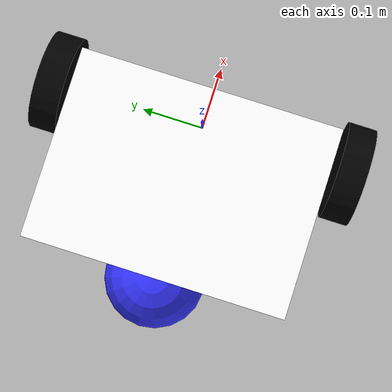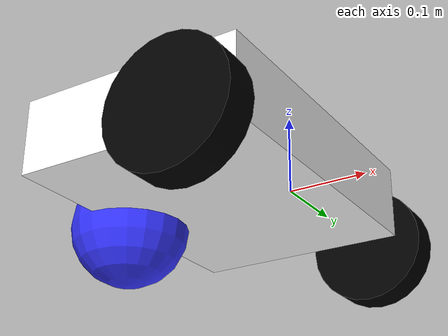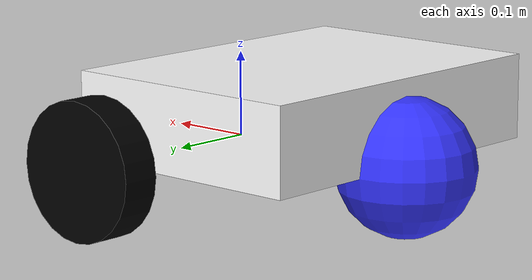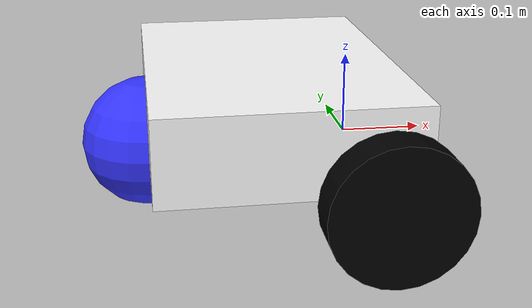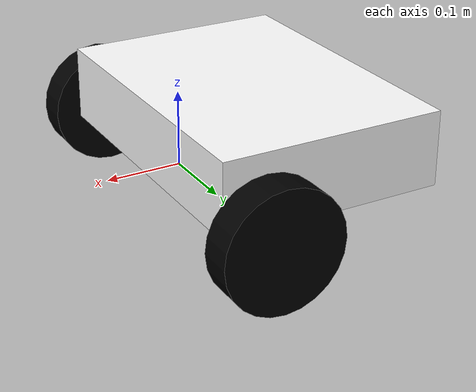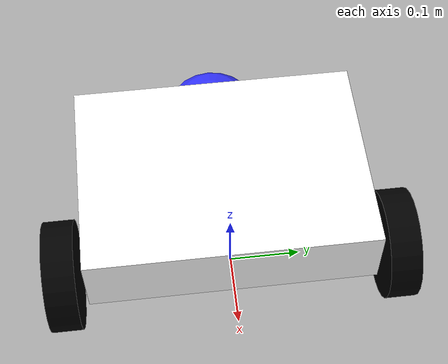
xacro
<?xml version="1.0"?>
<robot xmlns:xacro="http://www.ros.org/wiki/xacro">

    <xacro:include filename="inertial_macros.xacro"/>

    <material name="white">
        <color rgba="1 1 1 1" />
    </material>

    <material name="orange">
        <color rgba="1 0.3 0.1 1" />
    </material>

    <material name="blue">
        <color rgba="0.2 0.2 1 1" />
    </material>

    <material name="black">
        <color rgba="0 0 0 1" />
    </material>

    <material name="red">
        <color rgba="1 0 0 1" />
    </material>

    <!-- Base Link-->

    <link name="botwheel">
    </link>

    <!-- BASE_FOOTPRINT LINK -->

    <joint name="base_footprint_joint" type="fixed">
        <parent link="botwheel"/>
        <child link="base_footprint"/>
        <origin xyz="0 0 0" rpy="0 0 0"/>
    </joint>

    <link name="base_footprint">
    </link>

    <!-- Chassis Link -->

    <joint name="chassis_joint" type="fixed">
        <parent link="botwheel"/>
        <child link="chassis"/>
        <origin xyz= "0.05 0 0"/>
    </joint>

    <link name="chassis">
        <visual>
            <origin xyz="-0.15 0 0.05 "/>
            <geometry>
                <box size="0.3 0.415 0.1"/>
            </geometry>
            <material name="white"/>
        </visual>
        <collision>
            <origin xyz="-0.15 0 0.05 "/>
            <geometry>
                <box size="0.3 0.415 0.1"/>
            </geometry>
        </collision>
        <xacro:inertial_box mass="0.7" x="0.3" y="0.415" z="0.15">
            <origin xyz="-0.15 0 0.05 " rpy="0 0 0"/>
        </xacro:inertial_box>
    </link>

    <!-- Left Wheel Link -->

    <joint name="left_wheel_joint" type="continuous">
        <parent link="chassis"/>
        <child link="left_wheel"/>
        <origin xyz= "-0.05 0.2425 0" rpy="-${pi/2} 0 0"/>
        <axis xyz="0 0 1"/>
    </joint>

    <link name="left_wheel">
        <visual>
            <geometry>
                <cylinder radius="0.08" length="0.045"/>
            </geometry>
            <material name="black"/>
            <origin xyz="0 0 0"/>
        </visual>
        <collision>
            <geometry>
                <cylinder radius="0.08" length="0.045"/>
            </geometry>
        </collision>
        <xacro:inertial_cylinder mass="0.15" length="0.04" radius="0.05">
            <origin xyz="0 0 0" rpy="0 0 0"/>
        </xacro:inertial_cylinder>
    </link>

     <!-- Right Wheel Link -->
    <joint name="right_wheel_joint" type="continuous">
        <parent link="chassis"/>
        <child link="right_wheel"/>
        <origin xyz= "-0.05 -0.2425 0" rpy="${pi/2} 0 0"/>
        <axis xyz="0 0 -1"/>
    </joint>

    <link name="right_wheel">
        <visual>
            <geometry>
                <cylinder radius="0.08" length="0.045"/>
            </geometry>
            <material name="black"/>
            <origin xyz="0 0 0"/>
        </visual>
        <collision>
            <geometry>
                <cylinder radius="0.08" length="0.045"/>
            </geometry>
        </collision>
        <xacro:inertial_cylinder mass="0.15" length="0.04" radius="0.05">
            <origin xyz="0 0 0" rpy="0 0 0"/>
        </xacro:inertial_cylinder>
    </link>

    <!-- Caster Wheel -->

    <joint name="caster_wheel_joint" type="fixed">
        <parent link="chassis"/>
        <child link="caster_wheel"/>
        <origin xyz="-0.3 0 0"/>
    </joint>

    <link name="caster_wheel">
        <visual>
            <geometry>
                <sphere radius="0.08"/>
            </geometry>
            <material name="blue"/>
        </visual>
        <collision>
            <geometry>
                <sphere radius="0.08"/>
            </geometry>
        </collision>
        <xacro:inertial_sphere mass="0.1" radius="0.05">
            <origin xyz="0 0 0" rpy="0 0 0"/>
        </xacro:inertial_sphere>

    </link>

    <gazebo reference="caster_wheel">
        <mu1 value="0.0001"/>
        <mu2 value="0.0001"/>
    </gazebo>

</robot>
